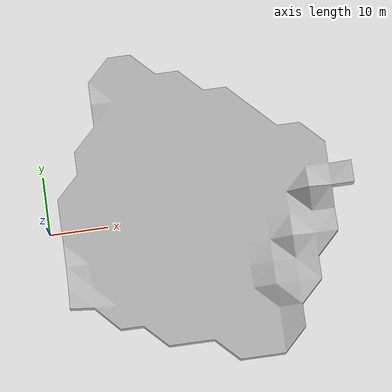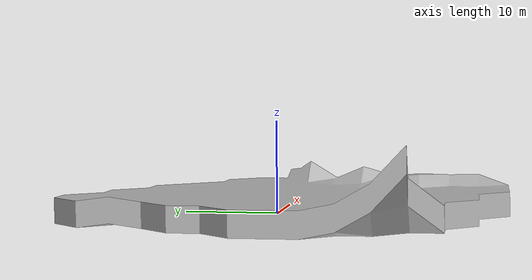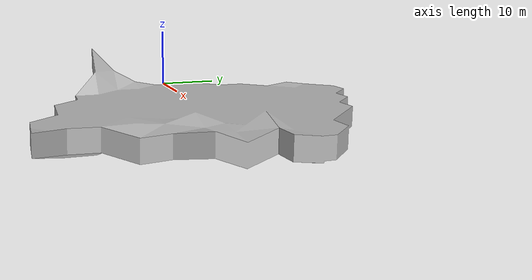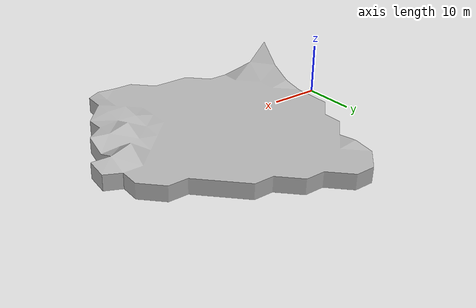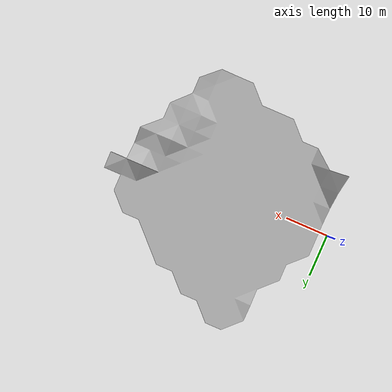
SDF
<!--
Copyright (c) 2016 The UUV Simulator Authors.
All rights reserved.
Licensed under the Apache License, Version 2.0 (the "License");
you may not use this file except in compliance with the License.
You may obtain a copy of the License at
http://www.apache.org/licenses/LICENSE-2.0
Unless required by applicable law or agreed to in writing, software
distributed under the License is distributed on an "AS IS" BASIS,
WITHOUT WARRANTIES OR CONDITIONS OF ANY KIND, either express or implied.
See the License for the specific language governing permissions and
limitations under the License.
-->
<?xml version="1.0" ?>
<sdf version="1.5">
  <model name="occluded_sand_heightmap">
    <static>true</static>
    <link name="link">
      <collision name="ground">
        <pose>0 0 0 0 0 0</pose>
        <geometry>
          <mesh><uri>model://occluded_sand_heightmap/meshes/mudpit.dae</uri></mesh>
        </geometry>
      </collision>

      <visual name="ground_sand">
        <cast_shadows>true</cast_shadows>
        <pose>0 0 0.1 0 0 0</pose>
        <geometry>
          <mesh><uri>model://occluded_sand_heightmap/meshes/mudpit.dae</uri></mesh>
        </geometry>
        <!-- For Gazebo Classic, you can use script material -->
      </visual>
    </link>
  </model>
</sdf>
